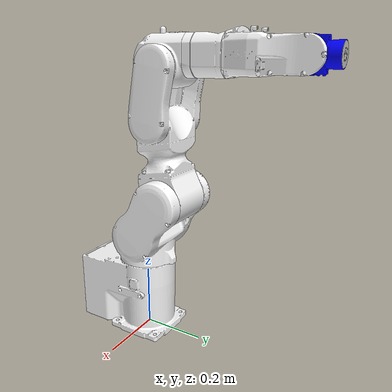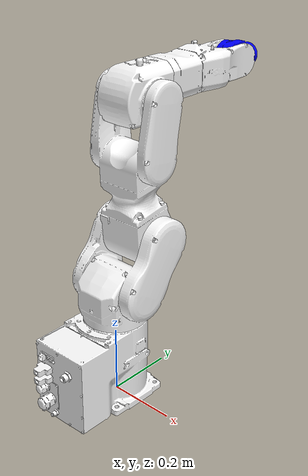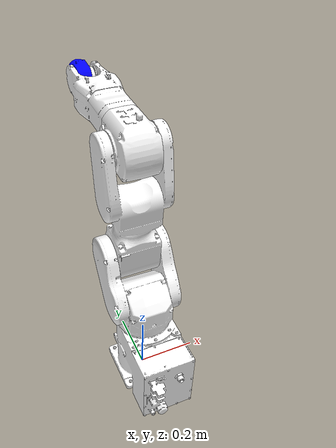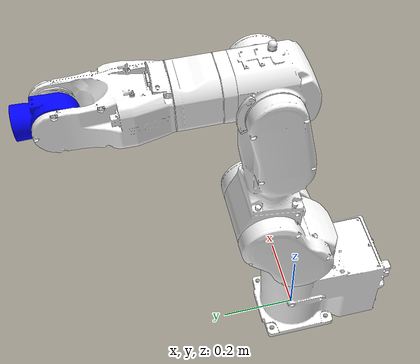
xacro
<?xml version="1.0"?>
<robot name="EPSON_C8-C901C" xmlns:xacro="http://www.ros.org/wiki/xacro">

<!-- arg model for xacro files -->
  <xacro:arg name="rb_model" default="C8-C901C" />

<!-- include xacro -->
  <xacro:include filename="$(find epson_robot_description)/models/$(arg rb_model)/urdf/epson_robot_property.xacro" />
  <xacro:include filename="$(find epson_robot_description)/models/$(arg rb_model)/urdf/epson_robot_transmission.xacro" />
  <xacro:include filename="$(find epson_robot_description)/models/$(arg rb_model)/urdf/epson_robot.ros2_control.xacro" />

<!-- world link -->
  <link name="world"/>

<!-- base link -->
  <link name="${BASE_LINK}">
    <visual>
      <origin
        xyz="0 0 0"
        rpy="1.57 0 0" />
      <geometry>
        <mesh
          filename="package://${BASE_MESH}" scale="0.001 0.001 0.001" />
      </geometry>
      <material
        name="">
        <color
          rgba="1 1 1 1" />
      </material>
    </visual>
    <collision>
      <origin
        xyz="0 0 0"
        rpy="1.57 0 0" />
      <geometry>
        <mesh
          filename="package://${BASE_MESH}" scale="0.001 0.001 0.001"/>
      </geometry>
    </collision>
  </link>
  <joint name="${BASE_JOINT}" type="fixed">
    <origin
      xyz="0 0 0"
      rpy="0 0 0" />
    <parent
      link="world"/>
    <child
      link="${BASE_LINK}" />
  </joint>

<!--link 1-->
  <link name="${LINK_1}">
    <visual>
      <origin
        xyz="0 0 -0.269"
        rpy="1.57 0 0" />
      <geometry>
        <mesh
          filename="package://${LINK1_MESH}" scale="0.001 0.001 0.001"/>
      </geometry>
      <material
        name="">
        <color
          rgba="1 1 1 1" />
      </material>
    </visual>
    <collision>
      <origin
        xyz="0 0 -0.269"
        rpy="1.57 0 0" />
      <geometry>
        <mesh
          filename="package://${LINK1_MESH}" scale="0.001 0.001 0.001"/>
      </geometry>
    </collision>
  </link>
  <xacro:transmission_joint name="${JOINT_1}" />
  <joint name="${JOINT_1}" type="revolute">
    <origin
      xyz="0 0 0.269"
      rpy="0 0 0" />
    <parent
      link="${BASE_LINK}" />
    <child
      link="${LINK_1}" />
    <axis
      xyz="0 0 1" />
    <limit
      lower="${joint1_limit_min_rad}"
      upper="${joint1_limit_max_rad}"
      velocity="${joint1_speed_limit_rad}"
      effort="${joint1_effort}" />
  </joint>

<!--link 2-->
  <link name="${LINK_2}">
    <visual>
      <origin
        xyz="0 -0.1 -0.472"
        rpy="1.57 0 0" />
      <geometry>
        <mesh
          filename="package://${LINK2_MESH}" scale="0.001 0.001 0.001"/>
      </geometry>
      <material
        name="">
        <color
          rgba="1 1 1 1" />
      </material>
    </visual>
    <collision>
      <origin
        xyz="0 -0.1 -0.472"
        rpy="1.57 0 0" />
      <geometry>
        <mesh
          filename="package://${LINK2_MESH}" scale="0.001 0.001 0.001"/>
      </geometry>
    </collision>
  </link>
  <xacro:transmission_joint name="${JOINT_2}" />
  <joint name="${JOINT_2}" type="revolute" >
    <origin
      xyz="0 0.1 0.203"
      rpy="0 0 0" />
    <parent
      link="${LINK_1}" />
    <child
      link="${LINK_2}" />
    <axis
      xyz="1 0 0" />
    <limit
      lower="${joint2_limit_min_rad}"
      upper="${joint2_limit_max_rad}"
      velocity="${joint2_speed_limit_rad}"
      effort="${joint2_effort}" />
  </joint>

<!--link 3-->
  <link name="${LINK_3}">
    <visual>
      <origin
        xyz="0 -0.1 -0.872"
        rpy="1.57 0 0" />
      <geometry>
        <mesh
          filename="package://${LINK3_MESH}" scale="0.001 0.001 0.001"/>
      </geometry>
      <material
        name="">
        <color
          rgba="1 1 1 1" />
      </material>
    </visual>
    <collision>
      <origin
        xyz="0 -0.1 -0.872"
        rpy="1.57 0 0" />
      <geometry>
        <mesh
          filename="package://${LINK3_MESH}" scale="0.001 0.001 0.001"/>
      </geometry>
    </collision>
  </link>
  <xacro:transmission_joint name="${JOINT_3}" />
  <joint name="${JOINT_3}" type="revolute" >
    <origin
      xyz="0 0 0.4"
      rpy="0 0 0" />
    <parent
      link="${LINK_2}" />
    <child
      link="${LINK_3}" />
    <axis
      xyz="1 0 0" />
    <limit
      lower="${joint3_limit_min_rad}"
      upper="${joint3_limit_max_rad}"
      velocity="${joint3_speed_limit_rad}"
      effort="${joint3_effort}" />
  </joint>

<!--link 4-->
  <link name="${LINK_4}">
    <visual>
      <origin
        xyz="0 -0.17 -0.902"
        rpy="1.57 0 0" />
      <geometry>
        <mesh
          filename="package://${LINK4_MESH}" scale="0.001 0.001 0.001"/>
      </geometry>
      <material
        name="">
        <color
          rgba="1 1 1 1" />
      </material>
    </visual>
    <collision>
      <origin
        xyz="0 -0.17 -0.902"
        rpy="1.57 0 0" />
      <geometry>
        <mesh
          filename="package://${LINK4_MESH}" scale="0.001 0.001 0.001"/>
      </geometry>
    </collision>
  </link>
  <xacro:transmission_joint name="${JOINT_4}" />
  <joint name="${JOINT_4}" type="revolute">
    <origin
      xyz="0 0.07 0.03"
      rpy="0 0 0"/>
    <parent
      link="${LINK_3}" />
    <child
      link="${LINK_4}" />
    <axis
      xyz="0 -1 0" />
    <limit
      lower="${joint4_limit_min_rad}"
      upper="${joint4_limit_max_rad}"
      velocity="${joint4_speed_limit_rad}"
      effort="${joint4_effort}" />
  </joint>

<!--link 5-->
  <link name="${LINK_5}">
    <visual>
      <origin
        xyz="0 -0.5 -0.902"
        rpy="1.57 0 0" />
      <geometry>
        <mesh
          filename="package://${LINK5_MESH}" scale="0.001 0.001 0.001"/>
      </geometry>
      <material
        name="">
        <color
          rgba="0 0 1 1" />
      </material>
    </visual>
    <collision>
      <origin
        xyz="0 -0.5 -0.902"
        rpy="1.57 0 0" />
      <geometry>
        <mesh
          filename="package://${LINK5_MESH}" scale="0.001 0.001 0.001"/>
      </geometry>
    </collision>
  </link>
  <xacro:transmission_joint name="${JOINT_5}" />
  <joint name="${JOINT_5}" type="revolute">
    <origin
      xyz="0 0.33 0"
      rpy="0 0 0"/>
    <parent
      link="${LINK_4}" />
    <child
      link="${LINK_5}" />
    <axis
      xyz="1 0 0" />
    <limit
      lower="${joint5_limit_min_rad}"
      upper="${joint5_limit_max_rad}"
      velocity="${joint5_speed_limit_rad}"
      effort="${joint5_effort}" />
  </joint>

<!--link 6-->
  <link name="${LINK_6}">
    <visual>
      <origin
        xyz="-0.902 0 -0.580"
        rpy="3.141593 0 1.570796" />
      <geometry>
        <mesh
          filename="package://${LINK6_MESH}" scale="0.001 0.001 0.001"/>
      </geometry>
      <material
        name="">
        <color
          rgba="0.75 0.75 0.75 1" />
      </material>
    </visual>
    <collision>
      <origin
        xyz="-0.902 0 -0.580"
        rpy="3.141593 0 1.570796" />
      <geometry>
        <mesh
          filename="package://${LINK6_MESH}" scale="0.001 0.001 0.001"/>
      </geometry>
    </collision>
  </link>
  <xacro:transmission_joint name="${JOINT_6}" />
  <joint name="${JOINT_6}" type="revolute">
    <origin
      xyz="0 0.080 0"
      rpy="-1.570796 -1.570796 0" />
    <parent
      link="${LINK_5}" />
    <child
      link="${LINK_6}" />
    <axis
      xyz="0 0 -1" />
    <limit
      lower="${joint6_limit_min_rad}"
      upper="${joint6_limit_max_rad}"
      velocity="${joint6_speed_limit_rad}"
      effort="${joint6_effort}" />
  </joint>

</robot>

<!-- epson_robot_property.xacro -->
<robot name="EPSON_C8-C901C" xmlns:xacro="http://www.ros.org/wiki/xacro">

<!-- Links -->
  <xacro:property name="BASE_LINK" value="base_link" />
<!-- Arm Links -->
  <xacro:property name="LINK_1" value="j1_link" />
  <xacro:property name="LINK_2" value="j2_link" />
  <xacro:property name="LINK_3" value="j3_link" />
  <xacro:property name="LINK_4" value="j4_link" />
  <xacro:property name="LINK_5" value="j5_link" />
  <xacro:property name="LINK_6" value="j6_link" />

<!-- Joints -->
  <xacro:property name="BASE_JOINT" value="base_joint" />
<!-- Arm Joints -->
  <xacro:property name="JOINT_1" value="j1_joint" />
  <xacro:property name="JOINT_2" value="j2_joint" />
  <xacro:property name="JOINT_3" value="j3_joint" />
  <xacro:property name="JOINT_4" value="j4_joint" />
  <xacro:property name="JOINT_5" value="j5_joint" />
  <xacro:property name="JOINT_6" value="j6_joint" />

<!-- Meshes -->
  <xacro:property name="BASE_MESH"  value="epson_robot_description/models/$(arg rb_model)/meshes/base.stl" />
  <xacro:property name="LINK1_MESH" value="epson_robot_description/models/$(arg rb_model)/meshes/j1.stl" />
  <xacro:property name="LINK2_MESH" value="epson_robot_description/models/$(arg rb_model)/meshes/j2.stl" />
  <xacro:property name="LINK3_MESH" value="epson_robot_description/models/$(arg rb_model)/meshes/j3.stl" />
  <xacro:property name="LINK4_MESH" value="epson_robot_description/models/$(arg rb_model)/meshes/j4.stl" />
  <xacro:property name="LINK5_MESH" value="epson_robot_description/models/$(arg rb_model)/meshes/j5.stl" />
  <xacro:property name="LINK6_MESH" value="epson_robot_description/models/$(arg rb_model)/meshes/j6.stl" />

<!-- Joint Limits(rad) -->
<!-- Max -->
  <xacro:property name="joint1_limit_max_rad" value="4.18883908162522" />
  <xacro:property name="joint2_limit_max_rad" value="1.13447266906985" />
  <xacro:property name="joint3_limit_max_rad" value="3.52557584819934" />
  <xacro:property name="joint4_limit_max_rad" value="3.4907011145661" />
  <xacro:property name="joint5_limit_max_rad" value="2.35626639554177" />
  <xacro:property name="joint6_limit_max_rad" value="9.42477796076938" />
<!-- Min -->
  <xacro:property name="joint1_limit_min_rad" value="-4.18883908162522" />
  <xacro:property name="joint2_limit_min_rad" value="-2.75764125712365" />
  <xacro:property name="joint3_limit_min_rad" value="-1.06465409277307" />
  <xacro:property name="joint4_limit_min_rad" value="-3.4907011145661" />
  <xacro:property name="joint5_limit_min_rad" value="-2.35626639554177" />
  <xacro:property name="joint6_limit_min_rad" value="-9.42477796076938" />

<!-- Speed Limit(rad) -->
  <xacro:property name="joint1_speed_limit_rad" value="5.13332132939508" />
  <xacro:property name="joint2_speed_limit_rad" value="5.23598775598298" />
  <xacro:property name="joint3_speed_limit_rad" value="6.28318530717958" />
  <xacro:property name="joint4_speed_limit_rad" value="8.37758040957278" />
  <xacro:property name="joint5_speed_limit_rad" value="7.85398163397448" />
  <xacro:property name="joint6_speed_limit_rad" value="12.5663706143591" />

<!-- Effort. 0.0 is enough but robot_state_publisher and move_group require them. -->
  <xacro:property name="joint1_effort" value="0.0" />
  <xacro:property name="joint2_effort" value="0.0" />
  <xacro:property name="joint3_effort" value="0.0" />
  <xacro:property name="joint4_effort" value="0.0" />
  <xacro:property name="joint5_effort" value="0.0" />
  <xacro:property name="joint6_effort" value="0.0" />

  <xacro:property name="true" value="1" />
  <xacro:property name="false" value="0" />

  <xacro:property name="revolute" value="0" />
  <xacro:property name="prismatic" value="1" />
</robot>
